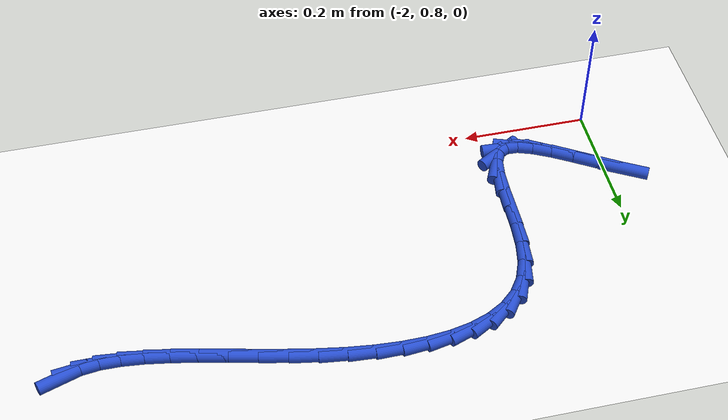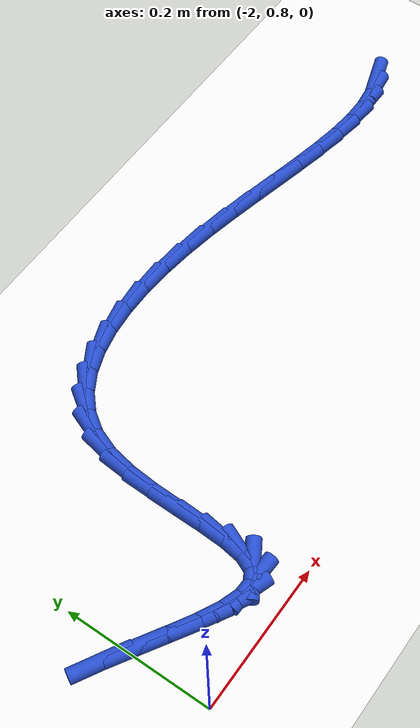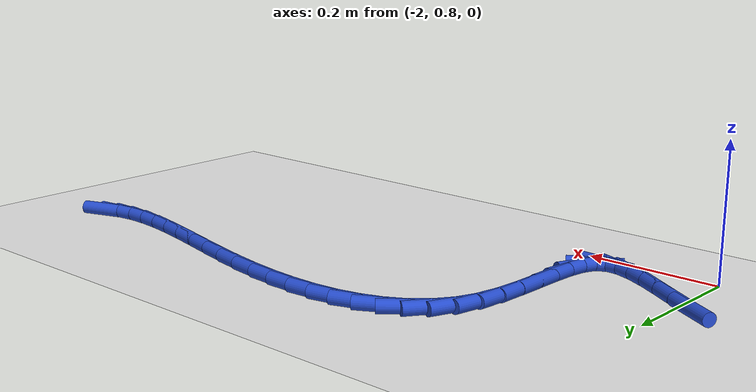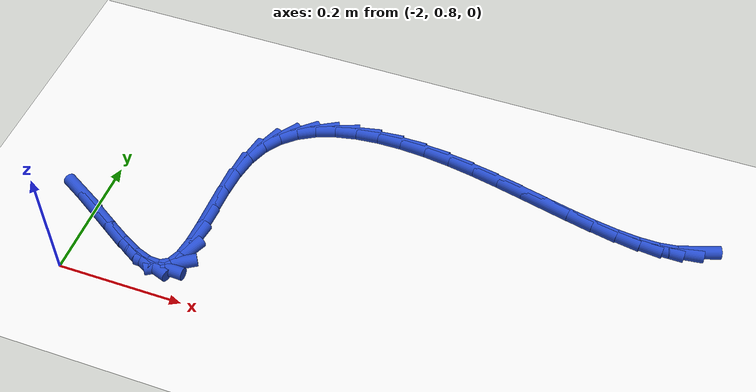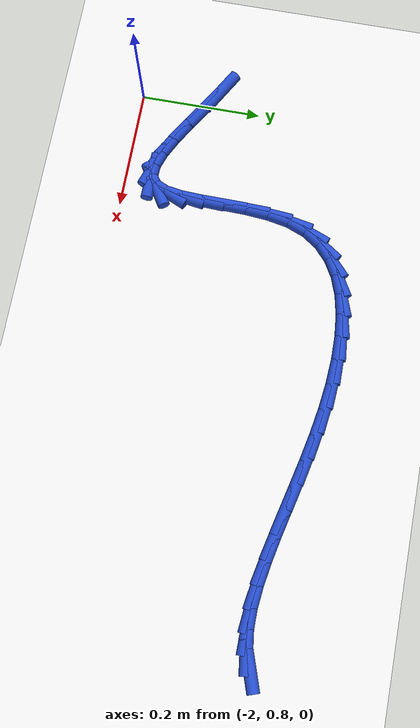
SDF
<sdf version="1.6">
 <world name="default">
  <model name="ground_plane">
   <static>1</static>
   <link name="link">
    <collision name="collision">
     <geometry><plane><normal>0 0 1</normal><size>100 100</size></plane></geometry>
     <surface><friction><ode><mu>100</mu><mu2>50</mu2></ode></friction></surface>
    </collision>
    <visual name="visual">
     <cast_shadows>0</cast_shadows>
     <geometry><plane><normal>0 0 1</normal><size>100 100</size></plane></geometry>
     <material>
      <script><uri>file://media/materials/scripts/gazebo.material</uri><name>Gazebo/WhiteGlow</name></script>
     </material>
    </visual>
   </link>
  </model>
  <model name="line">
   <link name="link_72">
    <pose>-1.1087522503657459 1.1398965230059936 0.01 0 1.57 0.3285878636843313</pose>
    <collision name="collision">
     <geometry><cylinder><radius>0.01</radius><length>0.08</length></cylinder></geometry>
    </collision>
    <visual name="visual">
     <material>
      <script><name>Gazebo/Blue</name><uri>file://media/materials/scripts/gazebo.material</uri></script>
     </material>
     <geometry><cylinder><radius>0.01</radius><length>0.08</length></cylinder></geometry>
    </visual>
   </link>
   <link name="link_73">
    <pose>-1.133218159752425 1.131554924621882 0.01 0 1.57 0.131525168505087</pose>
    <collision name="collision">
     <geometry><cylinder><radius>0.01</radius><length>0.08</length></cylinder></geometry>
    </collision>
    <visual name="visual">
     <material>
      <script><name>Gazebo/Blue</name><uri>file://media/materials/scripts/gazebo.material</uri></script>
     </material>
     <geometry><cylinder><radius>0.01</radius><length>0.08</length></cylinder></geometry>
    </visual>
   </link>
   <link name="link_74">
    <pose>-1.161426779951832 1.1278232382543925 0.01 0 1.57 -0.006274713537314527</pose>
    <collision name="collision">
     <geometry><cylinder><radius>0.01</radius><length>0.08</length></cylinder></geometry>
    </collision>
    <visual name="visual">
     <material>
      <script><name>Gazebo/Blue</name><uri>file://media/materials/scripts/gazebo.material</uri></script>
     </material>
     <geometry><cylinder><radius>0.01</radius><length>0.08</length></cylinder></geometry>
    </visual>
   </link>
   <link name="link_75">
    <pose>-1.1929460499617828 1.1280210152402441 0.01 0 1.57 -0.09987030137437107</pose>
    <collision name="collision">
     <geometry><cylinder><radius>0.01</radius><length>0.08</length></cylinder></geometry>
    </collision>
    <visual name="visual">
     <material>
      <script><name>Gazebo/Blue</name><uri>file://media/materials/scripts/gazebo.material</uri></script>
     </material>
     <geometry><cylinder><radius>0.01</radius><length>0.08</length></cylinder></geometry>
    </visual>
   </link>
   <link name="link_76">
    <pose>-1.2273439087800928 1.1314678069161548 0.01 0 1.57 -0.1618360470640728</pose>
    <collision name="collision">
     <geometry><cylinder><radius>0.01</radius><length>0.08</length></cylinder></geometry>
    </collision>
    <visual name="visual">
     <material>
      <script><name>Gazebo/Blue</name><uri>file://media/materials/scripts/gazebo.material</uri></script>
     </material>
     <geometry><cylinder><radius>0.01</radius><length>0.08</length></cylinder></geometry>
    </visual>
   </link>
   <link name="link_77">
    <pose>-1.2641882954045789 1.137483164618844 0.01 0 1.57 -0.2006523695797265</pose>
    <collision name="collision">
     <geometry><cylinder><radius>0.01</radius><length>0.08</length></cylinder></geometry>
    </collision>
    <visual name="visual">
     <material>
      <script><name>Gazebo/Blue</name><uri>file://media/materials/scripts/gazebo.material</uri></script>
     </material>
     <geometry><cylinder><radius>0.01</radius><length>0.08</length></cylinder></geometry>
    </visual>
   </link>
   <link name="link_78">
    <pose>-1.303047148833057 1.1453866396850299 0.01 0 1.57 -0.22159356886565013</pose>
    <collision name="collision">
     <geometry><cylinder><radius>0.01</radius><length>0.08</length></cylinder></geometry>
    </collision>
    <visual name="visual">
     <material>
      <script><name>Gazebo/Blue</name><uri>file://media/materials/scripts/gazebo.material</uri></script>
     </material>
     <geometry><cylinder><radius>0.01</radius><length>0.08</length></cylinder></geometry>
    </visual>
   </link>
   <link name="link_79">
    <pose>-1.3434884080633427 1.1544977834514314 0.01 0 1.57 -0.2277186369212504</pose>
    <collision name="collision">
     <geometry><cylinder><radius>0.01</radius><length>0.08</length></cylinder></geometry>
    </collision>
    <visual name="visual">
     <material>
      <script><name>Gazebo/Blue</name><uri>file://media/materials/scripts/gazebo.material</uri></script>
     </material>
     <geometry><cylinder><radius>0.01</radius><length>0.08</length></cylinder></geometry>
    </visual>
   </link>
   <link name="link_80">
    <pose>-1.3850800120932516 1.164136147254767 0.01 0 1.57 -0.22053616983571817</pose>
    <collision name="collision">
     <geometry><cylinder><radius>0.01</radius><length>0.08</length></cylinder></geometry>
    </collision>
    <visual name="visual">
     <material>
      <script><name>Gazebo/Blue</name><uri>file://media/materials/scripts/gazebo.material</uri></script>
     </material>
     <geometry><cylinder><radius>0.01</radius><length>0.08</length></cylinder></geometry>
    </visual>
   </link>
   <link name="link_81">
    <pose>-1.4273898999206 1.173621282431756 0.01 0 1.57 -0.2003787789697362</pose>
    <collision name="collision">
     <geometry><cylinder><radius>0.01</radius><length>0.08</length></cylinder></geometry>
    </collision>
    <visual name="visual">
     <material>
      <script><name>Gazebo/Blue</name><uri>file://media/materials/scripts/gazebo.material</uri></script>
     </material>
     <geometry><cylinder><radius>0.01</radius><length>0.08</length></cylinder></geometry>
    </visual>
   </link>
   <link name="link_82">
    <pose>-1.4699860105432045 1.1822727403191164 0.01 0 1.57 -0.16657673213014057</pose>
    <collision name="collision">
     <geometry><cylinder><radius>0.01</radius><length>0.08</length></cylinder></geometry>
    </collision>
    <visual name="visual">
     <material>
      <script><name>Gazebo/Blue</name><uri>file://media/materials/scripts/gazebo.material</uri></script>
     </material>
     <geometry><cylinder><radius>0.01</radius><length>0.08</length></cylinder></geometry>
    </visual>
   </link>
   <link name="link_83">
    <pose>-1.5124362718185183 1.1894101039607892 0.01 0 1.57 -0.11916077345939476</pose>
    <collision name="collision">
     <geometry><cylinder><radius>0.01</radius><length>0.08</length></cylinder></geometry>
    </collision>
    <visual name="visual">
     <material>
      <script><name>Gazebo/Blue</name><uri>file://media/materials/scripts/gazebo.material</uri></script>
     </material>
     <geometry><cylinder><radius>0.01</radius><length>0.08</length></cylinder></geometry>
    </visual>
   </link>
   <link name="link_84">
    <pose>-1.5542848619197636 1.1944205517384148 0.01 0 1.57 -0.060859816814498105</pose>
    <collision name="collision">
     <geometry><cylinder><radius>0.01</radius><length>0.08</length></cylinder></geometry>
    </collision>
    <visual name="visual">
     <material>
      <script><name>Gazebo/Blue</name><uri>file://media/materials/scripts/gazebo.material</uri></script>
     </material>
     <geometry><cylinder><radius>0.01</radius><length>0.08</length></cylinder></geometry>
    </visual>
   </link>
   <link name="link_85">
    <pose>-1.595002037052686 1.1969016555827008 0.01 0 1.57 0.010497408467981303</pose>
    <collision name="collision">
     <geometry><cylinder><radius>0.01</radius><length>0.08</length></cylinder></geometry>
    </collision>
    <visual name="visual">
     <material>
      <script><name>Gazebo/Blue</name><uri>file://media/materials/scripts/gazebo.material</uri></script>
     </material>
     <geometry><cylinder><radius>0.01</radius><length>0.08</length></cylinder></geometry>
    </visual>
   </link>
   <link name="link_86">
    <pose>-1.6340437124414333 1.1964918041141528 0.01 0 1.57 0.09913647148979352</pose>
    <collision name="collision">
     <geometry><cylinder><radius>0.01</radius><length>0.08</length></cylinder></geometry>
    </collision>
    <visual name="visual">
     <material>
      <script><name>Gazebo/Blue</name><uri>file://media/materials/scripts/gazebo.material</uri></script>
     </material>
     <geometry><cylinder><radius>0.01</radius><length>0.08</length></cylinder></geometry>
    </visual>
   </link>
   <link name="link_87">
    <pose>-1.6708658033101533 1.1928293859532766 0.01 0 1.57 0.21048585537994116</pose>
    <collision name="collision">
     <geometry><cylinder><radius>0.01</radius><length>0.08</length></cylinder></geometry>
    </collision>
    <visual name="visual">
     <material>
      <script><name>Gazebo/Blue</name><uri>file://media/materials/scripts/gazebo.material</uri></script>
     </material>
     <geometry><cylinder><radius>0.01</radius><length>0.08</length></cylinder></geometry>
    </visual>
   </link>
   <link name="link_88">
    <pose>-1.7049242248829921 1.1855527897205782 0.01 0 1.57 0.3507893659811556</pose>
    <collision name="collision">
     <geometry><cylinder><radius>0.01</radius><length>0.08</length></cylinder></geometry>
    </collision>
    <visual name="visual">
     <material>
      <script><name>Gazebo/Blue</name><uri>file://media/materials/scripts/gazebo.material</uri></script>
     </material>
     <geometry><cylinder><radius>0.01</radius><length>0.08</length></cylinder></geometry>
    </visual>
   </link>
   <link name="link_89">
    <pose>-1.7356748923840977 1.1743004040365623 0.01 0 1.57 0.5252628749806496</pose>
    <collision name="collision">
     <geometry><cylinder><radius>0.01</radius><length>0.08</length></cylinder></geometry>
    </collision>
    <visual name="visual">
     <material>
      <script><name>Gazebo/Blue</name><uri>file://media/materials/scripts/gazebo.material</uri></script>
     </material>
     <geometry><cylinder><radius>0.01</radius><length>0.08</length></cylinder></geometry>
    </visual>
   </link>
   <link name="link_90">
    <pose>-1.7625737210376171 1.1587106175217348 0.01 0 1.57 0.7337027779853041</pose>
    <collision name="collision">
     <geometry><cylinder><radius>0.01</radius><length>0.08</length></cylinder></geometry>
    </collision>
    <visual name="visual">
     <material>
      <script><name>Gazebo/Blue</name><uri>file://media/materials/scripts/gazebo.material</uri></script>
     </material>
     <geometry><cylinder><radius>0.01</radius><length>0.08</length></cylinder></geometry>
    </visual>
   </link>
   <link name="link_91">
    <pose>-1.7850766260676985 1.138421818796601 0.01 0 1.57 0.9648971670369225</pose>
    <collision name="collision">
     <geometry><cylinder><radius>0.01</radius><length>0.08</length></cylinder></geometry>
    </collision>
    <visual name="visual">
     <material>
      <script><name>Gazebo/Blue</name><uri>file://media/materials/scripts/gazebo.material</uri></script>
     </material>
     <geometry><cylinder><radius>0.01</radius><length>0.08</length></cylinder></geometry>
    </visual>
   </link>
   <link name="link_92">
    <pose>-1.8026395226984875 1.1130723964816671 0.01 0 1.57 1.1962360560238277</pose>
    <collision name="collision">
     <geometry><cylinder><radius>0.01</radius><length>0.08</length></cylinder></geometry>
    </collision>
    <visual name="visual">
     <material>
      <script><name>Gazebo/Blue</name><uri>file://media/materials/scripts/gazebo.material</uri></script>
     </material>
     <geometry><cylinder><radius>0.01</radius><length>0.08</length></cylinder></geometry>
    </visual>
   </link>
   <link name="link_93">
    <pose>-1.8147306424959238 1.0823154860173028 0.01 0 1.57 1.3800079972482096</pose>
    <collision name="collision">
     <geometry><cylinder><radius>0.01</radius><length>0.08</length></cylinder></geometry>
    </collision>
    <visual name="visual">
     <material>
      <script><name>Gazebo/Blue</name><uri>file://media/materials/scripts/gazebo.material</uri></script>
     </material>
     <geometry><cylinder><radius>0.01</radius><length>0.08</length></cylinder></geometry>
    </visual>
   </link>
   <link name="link_94">
    <pose>-1.8216012563133197 1.0467417852722323 0.01 0 1.57 1.4889985023644423</pose>
    <collision name="collision">
     <geometry><cylinder><radius>0.01</radius><length>0.08</length></cylinder></geometry>
    </collision>
    <visual name="visual">
     <material>
      <script><name>Gazebo/Blue</name><uri>file://media/materials/scripts/gazebo.material</uri></script>
     </material>
     <geometry><cylinder><radius>0.01</radius><length>0.08</length></cylinder></geometry>
    </visual>
   </link>
   <link name="link_95">
    <pose>-1.8247423812925379 1.00842638703581 0.01 0 1.57 1.5447434173008934</pose>
    <collision name="collision">
     <geometry><cylinder><radius>0.01</radius><length>0.08</length></cylinder></geometry>
    </collision>
    <visual name="visual">
     <material>
      <script><name>Gazebo/Blue</name><uri>file://media/materials/scripts/gazebo.material</uri></script>
     </material>
     <geometry><cylinder><radius>0.01</radius><length>0.08</length></cylinder></geometry>
    </visual>
   </link>
   <link name="link_96">
    <pose>-1.825754781494648 0.9695757882168744 0.01 0 1.57 1.557767247684456</pose>
    <collision name="collision">
     <geometry><cylinder><radius>0.01</radius><length>0.08</length></cylinder></geometry>
    </collision>
    <visual name="visual">
     <material>
      <script><name>Gazebo/Blue</name><uri>file://media/materials/scripts/gazebo.material</uri></script>
     </material>
     <geometry><cylinder><radius>0.01</radius><length>0.08</length></cylinder></geometry>
    </visual>
   </link>
   <link name="link_97">
    <pose>-1.826239220980721 0.9323964857242616 0.01 0 1.57 1.5240684369850246</pose>
    <collision name="collision">
     <geometry><cylinder><radius>0.01</radius><length>0.08</length></cylinder></geometry>
    </collision>
    <visual name="visual">
     <material>
      <script><name>Gazebo/Blue</name><uri>file://media/materials/scripts/gazebo.material</uri></script>
     </material>
     <geometry><cylinder><radius>0.01</radius><length>0.08</length></cylinder></geometry>
    </visual>
   </link>
   <link name="link_98">
    <pose>-1.8277964638118278 0.8990949764668096 0.01 0 1.57 1.4165844339452964</pose>
    <collision name="collision">
     <geometry><cylinder><radius>0.01</radius><length>0.08</length></cylinder></geometry>
    </collision>
    <visual name="visual">
     <material>
      <script><name>Gazebo/Blue</name><uri>file://media/materials/scripts/gazebo.material</uri></script>
     </material>
     <geometry><cylinder><radius>0.01</radius><length>0.08</length></cylinder></geometry>
    </visual>
   </link>
   <link name="link_99">
    <pose>-1.8320272740490384 0.8718777573533554 0.01 0 1.57 1.148458918774486</pose>
    <collision name="collision">
     <geometry><cylinder><radius>0.01</radius><length>0.08</length></cylinder></geometry>
    </collision>
    <visual name="visual">
     <material>
      <script><name>Gazebo/Blue</name><uri>file://media/materials/scripts/gazebo.material</uri></script>
     </material>
     <geometry><cylinder><radius>0.01</radius><length>0.08</length></cylinder></geometry>
    </visual>
   </link>
   <link name="link_100">
    <pose>-1.840532415753424 0.8529513252927363 0.01 0 1.57 0.5546207556323858</pose>
    <collision name="collision">
     <geometry><cylinder><radius>0.01</radius><length>0.08</length></cylinder></geometry>
    </collision>
    <visual name="visual">
     <material>
      <script><name>Gazebo/Blue</name><uri>file://media/materials/scripts/gazebo.material</uri></script>
     </material>
     <geometry><cylinder><radius>0.01</radius><length>0.08</length></cylinder></geometry>
    </visual>
   </link>
   <link name="link_101">
    <pose>-1.8547023699264376 0.8441733077727936 0.01 0 1.57 -0.03617089568698684</pose>
    <collision name="collision">
     <geometry><cylinder><radius>0.01</radius><length>0.08</length></cylinder></geometry>
    </collision>
    <visual name="visual">
     <material>
      <script><name>Gazebo/Blue</name><uri>file://media/materials/scripts/gazebo.material</uri></script>
     </material>
     <geometry><cylinder><radius>0.01</radius><length>0.08</length></cylinder></geometry>
    </visual>
   </link>
   <link name="link_102">
    <pose>-1.8744118039881401 0.8448865267262184 0.01 0 1.57 -0.3324405572329358</pose>
    <collision name="collision">
     <geometry><cylinder><radius>0.01</radius><length>0.08</length></cylinder></geometry>
    </collision>
    <visual name="visual">
     <material>
      <script><name>Gazebo/Blue</name><uri>file://media/materials/scripts/gazebo.material</uri></script>
     </material>
     <geometry><cylinder><radius>0.01</radius><length>0.08</length></cylinder></geometry>
    </visual>
   </link>
   <link name="link_103">
    <pose>-1.8988706996280666 0.8533310594025324 0.01 0 1.57 -0.4693596336410397</pose>
    <collision name="collision">
     <geometry><cylinder><radius>0.01</radius><length>0.08</length></cylinder></geometry>
    </collision>
    <visual name="visual">
     <material>
      <script><name>Gazebo/Blue</name><uri>file://media/materials/scripts/gazebo.material</uri></script>
     </material>
     <geometry><cylinder><radius>0.01</radius><length>0.08</length></cylinder></geometry>
    </visual>
   </link>
   <link name="link_104">
    <pose>-1.9272862057963833 0.8677422834042878 0.01 0 1.57 -0.5326000566152925</pose>
    <collision name="collision">
     <geometry><cylinder><radius>0.01</radius><length>0.08</length></cylinder></geometry>
    </collision>
    <visual name="visual">
     <material>
      <script><name>Gazebo/Blue</name><uri>file://media/materials/scripts/gazebo.material</uri></script>
     </material>
     <geometry><cylinder><radius>0.01</radius><length>0.08</length></cylinder></geometry>
    </visual>
   </link>
   <link name="link_105">
    <pose>-1.958865471443252 0.8863555763340354 0.01 0 1.57 -0.5550304396100494</pose>
    <collision name="collision">
     <geometry><cylinder><radius>0.01</radius><length>0.08</length></cylinder></geometry>
    </collision>
    <visual name="visual">
     <material>
      <script><name>Gazebo/Blue</name><uri>file://media/materials/scripts/gazebo.material</uri></script>
     </material>
     <geometry><cylinder><radius>0.01</radius><length>0.08</length></cylinder></geometry>
    </visual>
   </link>
   <link name="link_106">
    <pose>-1.9928156455188384 0.9074063157943275 0.01 0 1.57 -0.5487925516965417</pose>
    <collision name="collision">
     <geometry><cylinder><radius>0.01</radius><length>0.08</length></cylinder></geometry>
    </collision>
    <visual name="visual">
     <material>
      <script><name>Gazebo/Blue</name><uri>file://media/materials/scripts/gazebo.material</uri></script>
     </material>
     <geometry><cylinder><radius>0.01</radius><length>0.08</length></cylinder></geometry>
    </visual>
   </link>
   <link name="link_107">
    <pose>-2.028343876973307 0.9291298793877154 0.01 0 1.57 -0.5166770320369087</pose>
    <collision name="collision">
     <geometry><cylinder><radius>0.01</radius><length>0.08</length></cylinder></geometry>
    </collision>
    <visual name="visual">
     <material>
      <script><name>Gazebo/Blue</name><uri>file://media/materials/scripts/gazebo.material</uri></script>
     </material>
     <geometry><cylinder><radius>0.01</radius><length>0.08</length></cylinder></geometry>
    </visual>
   </link>
  </model>
 </world>
</sdf>
